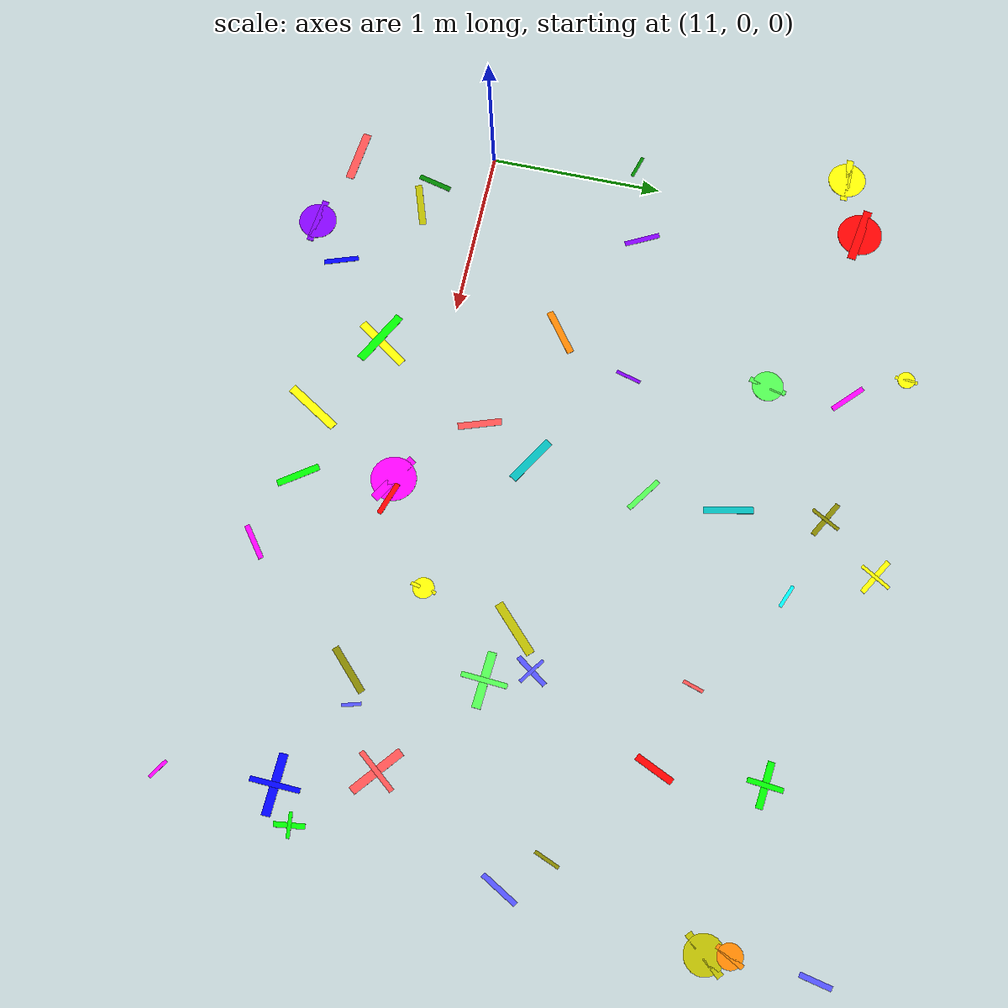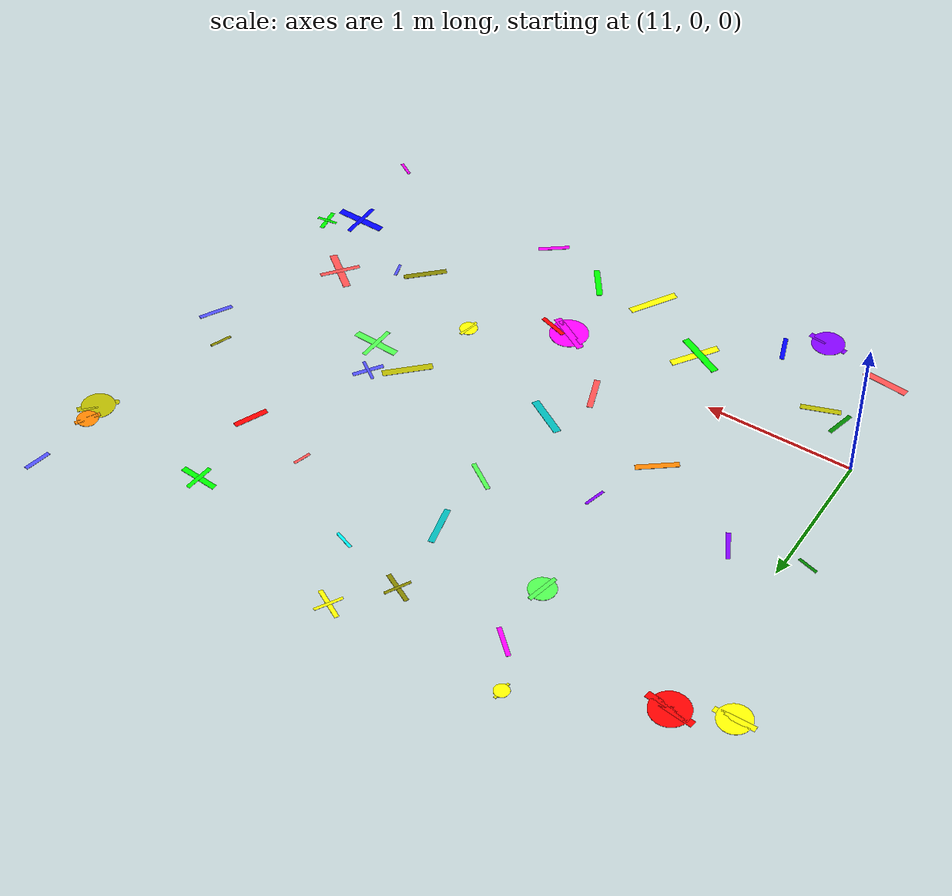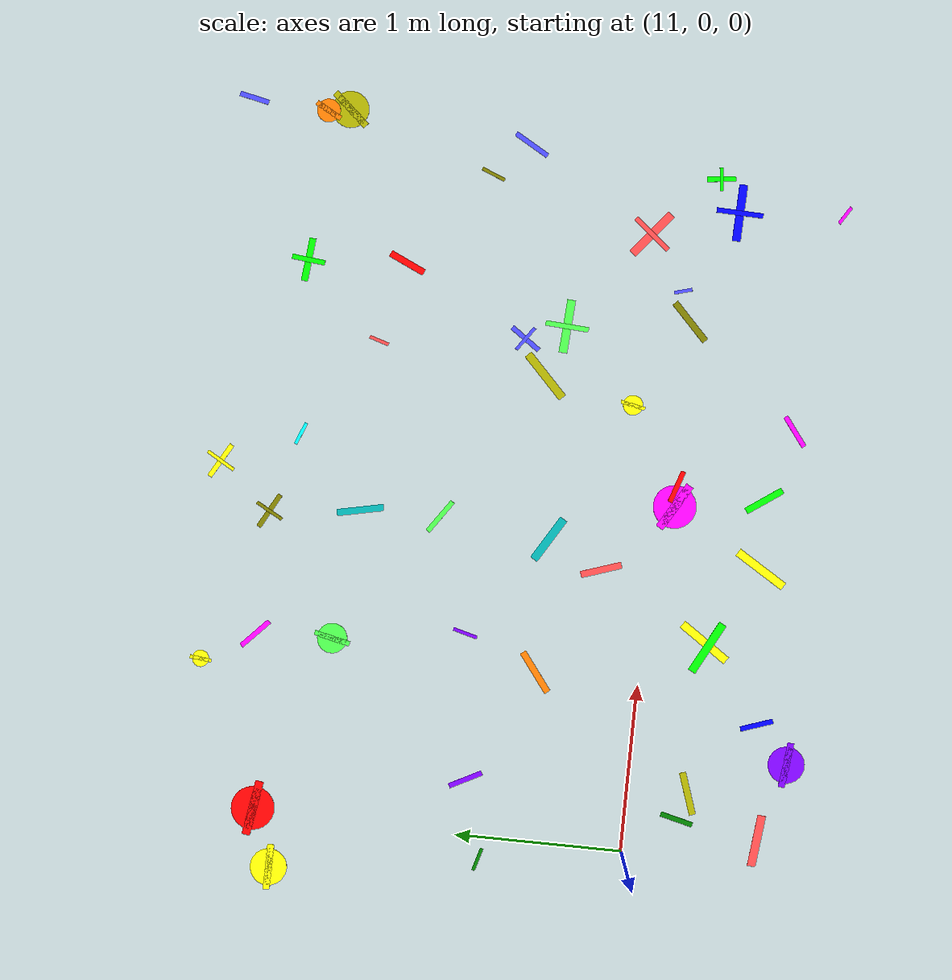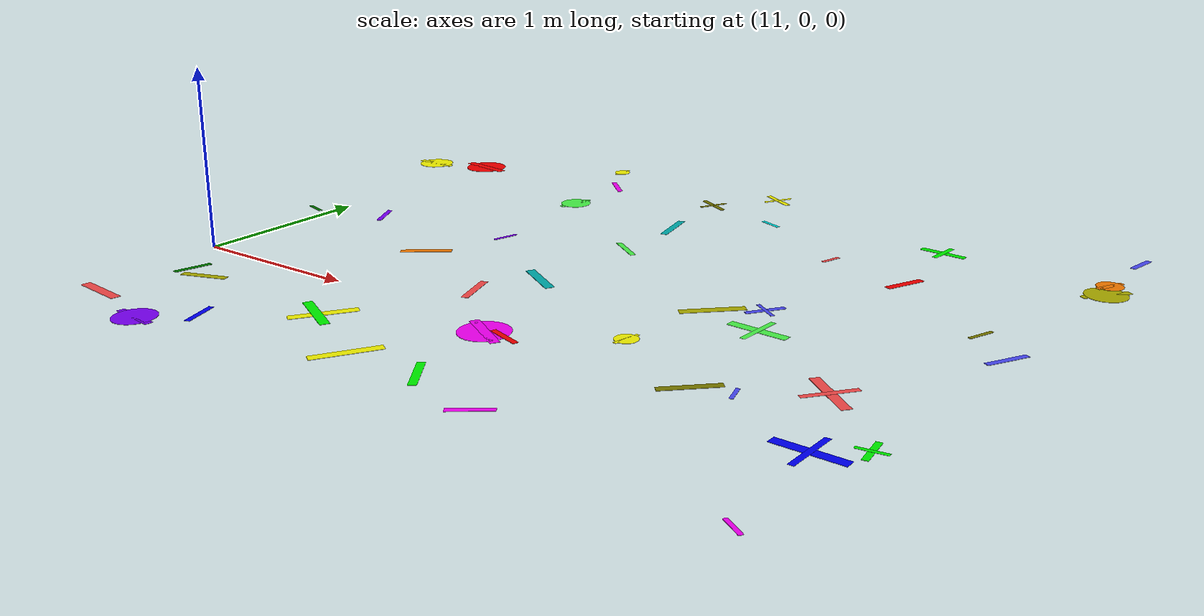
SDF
<sdf version="1.6">
 <world name="default">
  <model name="letter_K_1968">
   <static>true</static>
   <pose>11.15 -0.80 0.007 0 0 3.033</pose>
   <link name="link">
    <visual name="visual">
     <geometry><box><size>0.31 0.05 0.002</size></box></geometry>
     <material>
      <ambient>1.0 0.3 0.3 1</ambient>
      <diffuse>1.0 0.3 0.3 1</diffuse>
      <specular>0.1 0.1 0.1 1</specular>
     </material>
    </visual>
   </link>
  </model>
  <model name="letter_J_1971">
   <static>true</static>
   <pose>11.39 -0.36 0.010 0 0 3.473</pose>
   <link name="link">
    <visual name="visual">
     <geometry><box><size>0.26 0.04 0.002</size></box></geometry>
     <material>
      <ambient>0.7 0.7 0.0 1</ambient>
      <diffuse>0.7 0.7 0.0 1</diffuse>
      <specular>0.1 0.1 0.1 1</specular>
     </material>
    </visual>
   </link>
  </model>
  <model name="letter_P_1972">
   <static>true</static>
   <pose>11.23 -0.31 0.009 0 0 1.335</pose>
   <link name="link">
    <visual name="visual">
     <geometry><box><size>0.20 0.03 0.002</size></box></geometry>
     <material>
      <ambient>0.0 0.5 0.0 1</ambient>
      <diffuse>0.0 0.5 0.0 1</diffuse>
      <specular>0.1 0.1 0.1 1</specular>
     </material>
    </visual>
   </link>
  </model>
  <model name="letter_D_1973">
   <static>true</static>
   <pose>10.87 0.85 0.005 0 0 6.004</pose>
   <link name="link">
    <visual name="visual">
     <geometry><box><size>0.14 0.02 0.002</size></box></geometry>
     <material>
      <ambient>0.0 0.5 0.0 1</ambient>
      <diffuse>0.0 0.5 0.0 1</diffuse>
      <specular>0.1 0.1 0.1 1</specular>
     </material>
    </visual>
   </link>
  </model>
  <model name="letter_B_1974">
   <static>true</static>
   <pose>11.34 0.97 0.011 0 0 2.048</pose>
   <link name="link">
    <visual name="visual">
     <geometry><box><size>0.21 0.03 0.002</size></box></geometry>
     <material>
      <ambient>0.5 0.0 1.0 1</ambient>
      <diffuse>0.5 0.0 1.0 1</diffuse>
      <specular>0.1 0.1 0.1 1</specular>
     </material>
    </visual>
   </link>
  </model>
  <model name="letter_O_1975">
   <static>true</static>
   <pose>10.70 2.09 0.011 0 0 6.280</pose>
   <link name="link">
    <visual name="visual">
     <geometry><box><size>0.27 0.04 0.002</size></box></geometry>
     <material>
      <ambient>1.0 1.0 0.0 1</ambient>
      <diffuse>1.0 1.0 0.0 1</diffuse>
      <specular>0.1 0.1 0.1 1</specular>
     </material>
    </visual>
    <visual name="visual2">
     <geometry><cylinder><radius>0.11</radius><length>0.002</length></cylinder></geometry>
     <material><ambient>1.0 1.0 0.0 1</ambient><diffuse>1.0 1.0 0.0 1</diffuse></material>
    </visual>
   </link>
  </model>
  <model name="letter_G_1976">
   <static>true</static>
   <pose>11.04 2.22 0.006 0 0 2.986</pose>
   <link name="link">
    <visual name="visual">
     <geometry><box><size>0.33 0.05 0.002</size></box></geometry>
     <material>
      <ambient>1.0 0.0 0.0 1</ambient>
      <diffuse>1.0 0.0 0.0 1</diffuse>
      <specular>0.1 0.1 0.1 1</specular>
     </material>
    </visual>
    <visual name="visual2">
     <geometry><cylinder><radius>0.13</radius><length>0.002</length></cylinder></geometry>
     <material><ambient>1.0 0.0 0.0 1</ambient><diffuse>1.0 0.0 0.0 1</diffuse></material>
    </visual>
   </link>
  </model>
  <model name="letter_O_2040">
   <static>true</static>
   <pose>11.62 -0.93 0.011 0 0 3.027</pose>
   <link name="link">
    <visual name="visual">
     <geometry><box><size>0.27 0.04 0.002</size></box></geometry>
     <material>
      <ambient>0.5 0.0 1.0 1</ambient>
      <diffuse>0.5 0.0 1.0 1</diffuse>
      <specular>0.1 0.1 0.1 1</specular>
     </material>
    </visual>
    <visual name="visual2">
     <geometry><cylinder><radius>0.11</radius><length>0.002</length></cylinder></geometry>
     <material><ambient>0.5 0.0 1.0 1</ambient><diffuse>0.5 0.0 1.0 1</diffuse></material>
    </visual>
   </link>
  </model>
  <model name="letter_Y_2041">
   <static>true</static>
   <pose>11.84 -0.73 0.012 0 0 1.904</pose>
   <link name="link">
    <visual name="visual">
     <geometry><box><size>0.20 0.03 0.002</size></box></geometry>
     <material>
      <ambient>0.0 0.0 1.0 1</ambient>
      <diffuse>0.0 0.0 1.0 1</diffuse>
      <specular>0.1 0.1 0.1 1</specular>
     </material>
    </visual>
   </link>
  </model>
  <model name="letter_U_2043">
   <static>true</static>
   <pose>12.27 -0.39 0.007 0 0 2.658</pose>
   <link name="link">
    <visual name="visual">
     <geometry><box><size>0.34 0.05 0.002</size></box></geometry>
     <material>
      <ambient>0.0 1.0 0.0 1</ambient>
      <diffuse>0.0 1.0 0.0 1</diffuse>
      <specular>0.1 0.1 0.1 1</specular>
     </material>
    </visual>
   </link>
  </model>
  <model name="letter_D_2044">
   <static>true</static>
   <pose>12.30 -0.37 0.004 0 0 4.115</pose>
   <link name="link">
    <visual name="visual">
     <geometry><box><size>0.34 0.05 0.002</size></box></geometry>
     <material>
      <ambient>1.0 1.0 0.0 1</ambient>
      <diffuse>1.0 1.0 0.0 1</diffuse>
      <specular>0.1 0.1 0.1 1</specular>
     </material>
    </visual>
   </link>
  </model>
  <model name="letter_S_2045">
   <static>true</static>
   <pose>12.02 0.62 0.007 0 0 3.793</pose>
   <link name="link">
    <visual name="visual">
     <geometry><box><size>0.28 0.04 0.002</size></box></geometry>
     <material>
      <ambient>1.0 0.5 0.0 1</ambient>
      <diffuse>1.0 0.5 0.0 1</diffuse>
      <specular>0.1 0.1 0.1 1</specular>
     </material>
    </visual>
   </link>
  </model>
  <model name="letter_U_2046">
   <static>true</static>
   <pose>12.21 1.06 0.009 0 0 4.455</pose>
   <link name="link">
    <visual name="visual">
     <geometry><box><size>0.15 0.02 0.002</size></box></geometry>
     <material>
      <ambient>0.5 0.0 1.0 1</ambient>
      <diffuse>0.5 0.0 1.0 1</diffuse>
      <specular>0.1 0.1 0.1 1</specular>
     </material>
    </visual>
   </link>
  </model>
  <model name="letter_G_2047">
   <static>true</static>
   <pose>12.10 1.85 0.008 0 0 4.489</pose>
   <link name="link">
    <visual name="visual">
     <geometry><box><size>0.22 0.03 0.002</size></box></geometry>
     <material>
      <ambient>0.3 1.0 0.3 1</ambient>
      <diffuse>0.3 1.0 0.3 1</diffuse>
      <specular>0.1 0.1 0.1 1</specular>
     </material>
    </visual>
    <visual name="visual2">
     <geometry><cylinder><radius>0.09</radius><length>0.002</length></cylinder></geometry>
     <material><ambient>0.3 1.0 0.3 1</ambient><diffuse>0.3 1.0 0.3 1</diffuse></material>
    </visual>
   </link>
  </model>
  <model name="letter_V_2048">
   <static>true</static>
   <pose>12.08 2.31 0.008 0 0 5.524</pose>
   <link name="link">
    <visual name="visual">
     <geometry><box><size>0.22 0.03 0.002</size></box></geometry>
     <material>
      <ambient>1.0 0.0 1.0 1</ambient>
      <diffuse>1.0 0.0 1.0 1</diffuse>
      <specular>0.1 0.1 0.1 1</specular>
     </material>
    </visual>
   </link>
  </model>
  <model name="letter_C_2050">
   <static>true</static>
   <pose>11.90 2.62 0.013 0 0 1.464</pose>
   <link name="link">
    <visual name="visual">
     <geometry><box><size>0.13 0.02 0.002</size></box></geometry>
     <material>
      <ambient>1.0 1.0 0.0 1</ambient>
      <diffuse>1.0 1.0 0.0 1</diffuse>
      <specular>0.1 0.1 0.1 1</specular>
     </material>
    </visual>
    <visual name="visual2">
     <geometry><cylinder><radius>0.05</radius><length>0.002</length></cylinder></geometry>
     <material><ambient>1.0 1.0 0.0 1</ambient><diffuse>1.0 1.0 0.0 1</diffuse></material>
    </visual>
   </link>
  </model>
  <model name="letter_Z_2120">
   <static>true</static>
   <pose>13.18 -0.64 0.008 0 0 2.184</pose>
   <link name="link">
    <visual name="visual">
     <geometry><box><size>0.25 0.04 0.002</size></box></geometry>
     <material>
      <ambient>0.0 1.0 0.0 1</ambient>
      <diffuse>0.0 1.0 0.0 1</diffuse>
      <specular>0.1 0.1 0.1 1</specular>
     </material>
    </visual>
   </link>
  </model>
  <model name="letter_M_2121">
   <static>true</static>
   <pose>12.77 -0.66 0.012 0 0 4.162</pose>
   <link name="link">
    <visual name="visual">
     <geometry><box><size>0.34 0.05 0.002</size></box></geometry>
     <material>
      <ambient>1.0 1.0 0.0 1</ambient>
      <diffuse>1.0 1.0 0.0 1</diffuse>
      <specular>0.1 0.1 0.1 1</specular>
     </material>
    </visual>
   </link>
  </model>
  <model name="letter_D_2122">
   <static>true</static>
   <pose>12.67 0.29 0.012 0 0 1.898</pose>
   <link name="link">
    <visual name="visual">
     <geometry><box><size>0.25 0.04 0.002</size></box></geometry>
     <material>
      <ambient>1.0 0.3 0.3 1</ambient>
      <diffuse>1.0 0.3 0.3 1</diffuse>
      <specular>0.1 0.1 0.1 1</specular>
     </material>
    </visual>
   </link>
  </model>
  <model name="letter_Q_2123">
   <static>true</static>
   <pose>13.09 -0.11 0.010 0 0 5.752</pose>
   <link name="link">
    <visual name="visual">
     <geometry><box><size>0.31 0.05 0.002</size></box></geometry>
     <material>
      <ambient>1.0 0.0 1.0 1</ambient>
      <diffuse>1.0 0.0 1.0 1</diffuse>
      <specular>0.1 0.1 0.1 1</specular>
     </material>
    </visual>
    <visual name="visual2">
     <geometry><cylinder><radius>0.13</radius><length>0.002</length></cylinder></geometry>
     <material><ambient>1.0 0.0 1.0 1</ambient><diffuse>1.0 0.0 1.0 1</diffuse></material>
    </visual>
   </link>
  </model>
  <model name="letter_Z_2124">
   <static>true</static>
   <pose>13.21 -0.11 0.012 0 0 2.823</pose>
   <link name="link">
    <visual name="visual">
     <geometry><box><size>0.20 0.03 0.002</size></box></geometry>
     <material>
      <ambient>1.0 0.0 0.0 1</ambient>
      <diffuse>1.0 0.0 0.0 1</diffuse>
      <specular>0.1 0.1 0.1 1</specular>
     </material>
    </visual>
   </link>
  </model>
  <model name="letter_D_2125">
   <static>true</static>
   <pose>12.82 0.62 0.005 0 0 2.601</pose>
   <link name="link">
    <visual name="visual">
     <geometry><box><size>0.30 0.05 0.002</size></box></geometry>
     <material>
      <ambient>0.0 0.7 0.7 1</ambient>
      <diffuse>0.0 0.7 0.7 1</diffuse>
      <specular>0.1 0.1 0.1 1</specular>
     </material>
    </visual>
   </link>
  </model>
  <model name="letter_D_2126">
   <static>true</static>
   <pose>12.89 1.28 0.008 0 0 2.536</pose>
   <link name="link">
    <visual name="visual">
     <geometry><box><size>0.23 0.03 0.002</size></box></geometry>
     <material>
      <ambient>0.3 1.0 0.3 1</ambient>
      <diffuse>0.3 1.0 0.3 1</diffuse>
      <specular>0.1 0.1 0.1 1</specular>
     </material>
    </visual>
   </link>
  </model>
  <model name="letter_M_2127">
   <static>true</static>
   <pose>12.88 1.76 0.010 0 0 4.922</pose>
   <link name="link">
    <visual name="visual">
     <geometry><box><size>0.28 0.04 0.002</size></box></geometry>
     <material>
      <ambient>0.0 0.7 0.7 1</ambient>
      <diffuse>0.0 0.7 0.7 1</diffuse>
      <specular>0.1 0.1 0.1 1</specular>
     </material>
    </visual>
   </link>
  </model>
  <model name="letter_H_2128">
   <static>true</static>
   <pose>12.82 2.30 0.009 0 0 5.786</pose>
   <link name="link">
    <visual name="visual">
     <geometry><box><size>0.23 0.03 0.002</size></box></geometry>
     <material>
      <ambient>0.5 0.5 0.0 1</ambient>
      <diffuse>0.5 0.5 0.0 1</diffuse>
      <specular>0.1 0.1 0.1 1</specular>
     </material>
    </visual>
    <visual name="visual2">
     <pose>0 0 0.001 0 0 1.57</pose>
     <geometry><box><size>0.18 0.02 0.001</size></box></geometry>
     <material><ambient>0.5 0.5 0.0 1</ambient><diffuse>0.5 0.5 0.0 1</diffuse></material>
    </visual>
   </link>
  </model>
  <model name="letter_W_2129">
   <static>true</static>
   <pose>13.30 2.16 0.007 0 0 5.903</pose>
   <link name="link">
    <visual name="visual">
     <geometry><box><size>0.14 0.02 0.002</size></box></geometry>
     <material>
      <ambient>0.0 1.0 1.0 1</ambient>
      <diffuse>0.0 1.0 1.0 1</diffuse>
      <specular>0.1 0.1 0.1 1</specular>
     </material>
    </visual>
   </link>
  </model>
  <model name="letter_F_2130">
   <static>true</static>
   <pose>13.09 2.62 0.011 0 0 5.760</pose>
   <link name="link">
    <visual name="visual">
     <geometry><box><size>0.23 0.03 0.002</size></box></geometry>
     <material>
      <ambient>1.0 1.0 0.0 1</ambient>
      <diffuse>1.0 1.0 0.0 1</diffuse>
      <specular>0.1 0.1 0.1 1</specular>
     </material>
    </visual>
    <visual name="visual2">
     <pose>0 0 0.001 0 0 1.57</pose>
     <geometry><box><size>0.19 0.02 0.001</size></box></geometry>
     <material><ambient>1.0 1.0 0.0 1</ambient><diffuse>1.0 1.0 0.0 1</diffuse></material>
    </visual>
   </link>
  </model>
  <model name="letter_P_2197">
   <static>true</static>
   <pose>13.61 -0.78 0.008 0 0 0.649</pose>
   <link name="link">
    <visual name="visual">
     <geometry><box><size>0.21 0.03 0.002</size></box></geometry>
     <material>
      <ambient>1.0 0.0 1.0 1</ambient>
      <diffuse>1.0 0.0 1.0 1</diffuse>
      <specular>0.1 0.1 0.1 1</specular>
     </material>
    </visual>
   </link>
  </model>
  <model name="letter_J_2198">
   <static>true</static>
   <pose>14.38 -0.03 0.006 0 0 4.988</pose>
   <link name="link">
    <visual name="visual">
     <geometry><box><size>0.11 0.02 0.002</size></box></geometry>
     <material>
      <ambient>0.3 0.3 1.0 1</ambient>
      <diffuse>0.3 0.3 1.0 1</diffuse>
      <specular>0.1 0.1 0.1 1</specular>
     </material>
    </visual>
   </link>
  </model>
  <model name="letter_Q_2199">
   <static>true</static>
   <pose>13.67 0.20 0.007 0 0 4.511</pose>
   <link name="link">
    <visual name="visual">
     <geometry><box><size>0.15 0.02 0.002</size></box></geometry>
     <material>
      <ambient>1.0 1.0 0.0 1</ambient>
      <diffuse>1.0 1.0 0.0 1</diffuse>
      <specular>0.1 0.1 0.1 1</specular>
     </material>
    </visual>
    <visual name="visual2">
     <geometry><cylinder><radius>0.06</radius><length>0.002</length></cylinder></geometry>
     <material><ambient>1.0 1.0 0.0 1</ambient><diffuse>1.0 1.0 0.0 1</diffuse></material>
    </visual>
   </link>
  </model>
  <model name="letter_D_2200">
   <static>true</static>
   <pose>14.20 -0.09 0.010 0 0 3.909</pose>
   <link name="link">
    <visual name="visual">
     <geometry><box><size>0.29 0.04 0.002</size></box></geometry>
     <material>
      <ambient>0.5 0.5 0.0 1</ambient>
      <diffuse>0.5 0.5 0.0 1</diffuse>
      <specular>0.1 0.1 0.1 1</specular>
     </material>
    </visual>
   </link>
  </model>
  <model name="letter_A_2201">
   <static>true</static>
   <pose>14.10 0.64 0.005 0 0 6.219</pose>
   <link name="link">
    <visual name="visual">
     <geometry><box><size>0.32 0.05 0.002</size></box></geometry>
     <material>
      <ambient>0.3 1.0 0.3 1</ambient>
      <diffuse>0.3 1.0 0.3 1</diffuse>
      <specular>0.1 0.1 0.1 1</specular>
     </material>
    </visual>
    <visual name="visual2">
     <pose>0 0 0.001 0 0 1.57</pose>
     <geometry><box><size>0.26 0.03 0.001</size></box></geometry>
     <material><ambient>0.3 1.0 0.3 1</ambient><diffuse>0.3 1.0 0.3 1</diffuse></material>
    </visual>
   </link>
  </model>
  <model name="letter_F_2202">
   <static>true</static>
   <pose>14.00 0.88 0.010 0 0 0.955</pose>
   <link name="link">
    <visual name="visual">
     <geometry><box><size>0.21 0.03 0.002</size></box></geometry>
     <material>
      <ambient>0.3 0.3 1.0 1</ambient>
      <diffuse>0.3 0.3 1.0 1</diffuse>
      <specular>0.1 0.1 0.1 1</specular>
     </material>
    </visual>
    <visual name="visual2">
     <pose>0 0 0.001 0 0 1.57</pose>
     <geometry><box><size>0.17 0.02 0.001</size></box></geometry>
     <material><ambient>0.3 0.3 1.0 1</ambient><diffuse>0.3 0.3 1.0 1</diffuse></material>
    </visual>
   </link>
  </model>
  <model name="letter_U_2203">
   <static>true</static>
   <pose>13.79 0.74 0.009 0 0 3.910</pose>
   <link name="link">
    <visual name="visual">
     <geometry><box><size>0.33 0.05 0.002</size></box></geometry>
     <material>
      <ambient>0.7 0.7 0.0 1</ambient>
      <diffuse>0.7 0.7 0.0 1</diffuse>
      <specular>0.1 0.1 0.1 1</specular>
     </material>
    </visual>
   </link>
  </model>
  <model name="letter_S_2204">
   <static>true</static>
   <pose>14.38 1.63 0.007 0 0 1.146</pose>
   <link name="link">
    <visual name="visual">
     <geometry><box><size>0.23 0.04 0.002</size></box></geometry>
     <material>
      <ambient>1.0 0.0 0.0 1</ambient>
      <diffuse>1.0 0.0 0.0 1</diffuse>
      <specular>0.1 0.1 0.1 1</specular>
     </material>
    </visual>
   </link>
  </model>
  <model name="letter_W_2205">
   <static>true</static>
   <pose>13.90 1.75 0.013 0 0 1.271</pose>
   <link name="link">
    <visual name="visual">
     <geometry><box><size>0.12 0.02 0.002</size></box></geometry>
     <material>
      <ambient>1.0 0.3 0.3 1</ambient>
      <diffuse>1.0 0.3 0.3 1</diffuse>
      <specular>0.1 0.1 0.1 1</specular>
     </material>
    </visual>
   </link>
  </model>
  <model name="letter_A_2206">
   <static>true</static>
   <pose>14.34 2.22 0.008 0 0 3.044</pose>
   <link name="link">
    <visual name="visual">
     <geometry><box><size>0.26 0.04 0.002</size></box></geometry>
     <material>
      <ambient>0.0 1.0 0.0 1</ambient>
      <diffuse>0.0 1.0 0.0 1</diffuse>
      <specular>0.1 0.1 0.1 1</specular>
     </material>
    </visual>
    <visual name="visual2">
     <pose>0 0 0.001 0 0 1.57</pose>
     <geometry><box><size>0.20 0.03 0.001</size></box></geometry>
     <material><ambient>0.0 1.0 0.0 1</ambient><diffuse>0.0 1.0 0.0 1</diffuse></material>
    </visual>
   </link>
  </model>
  <model name="letter_V_2278">
   <static>true</static>
   <pose>14.93 -0.95 0.004 0 0 2.585</pose>
   <link name="link">
    <visual name="visual">
     <geometry><box><size>0.12 0.02 0.002</size></box></geometry>
     <material>
      <ambient>1.0 0.0 1.0 1</ambient>
      <diffuse>1.0 0.0 1.0 1</diffuse>
      <specular>0.1 0.1 0.1 1</specular>
     </material>
    </visual>
   </link>
  </model>
  <model name="letter_A_2280">
   <static>true</static>
   <pose>15.07 -0.19 0.011 0 0 4.839</pose>
   <link name="link">
    <visual name="visual">
     <geometry><box><size>0.17 0.03 0.002</size></box></geometry>
     <material>
      <ambient>0.0 1.0 0.0 1</ambient>
      <diffuse>0.0 1.0 0.0 1</diffuse>
      <specular>0.1 0.1 0.1 1</specular>
     </material>
    </visual>
    <visual name="visual2">
     <pose>0 0 0.001 0 0 1.57</pose>
     <geometry><box><size>0.14 0.02 0.001</size></box></geometry>
     <material><ambient>0.0 1.0 0.0 1</ambient><diffuse>0.0 1.0 0.0 1</diffuse></material>
    </visual>
   </link>
  </model>
  <model name="letter_F_2281">
   <static>true</static>
   <pose>14.70 0.19 0.010 0 0 2.461</pose>
   <link name="link">
    <visual name="visual">
     <geometry><box><size>0.33 0.05 0.002</size></box></geometry>
     <material>
      <ambient>1.0 0.3 0.3 1</ambient>
      <diffuse>1.0 0.3 0.3 1</diffuse>
      <specular>0.1 0.1 0.1 1</specular>
     </material>
    </visual>
    <visual name="visual2">
     <pose>0 0 0.001 0 0 1.57</pose>
     <geometry><box><size>0.27 0.03 0.001</size></box></geometry>
     <material><ambient>1.0 0.3 0.3 1</ambient><diffuse>1.0 0.3 0.3 1</diffuse></material>
    </visual>
   </link>
  </model>
  <model name="letter_F_2282">
   <static>true</static>
   <pose>14.88 -0.32 0.007 0 0 6.252</pose>
   <link name="link">
    <visual name="visual">
     <geometry><box><size>0.34 0.05 0.002</size></box></geometry>
     <material>
      <ambient>0.0 0.0 1.0 1</ambient>
      <diffuse>0.0 0.0 1.0 1</diffuse>
      <specular>0.1 0.1 0.1 1</specular>
     </material>
    </visual>
    <visual name="visual2">
     <pose>0 0 0.001 0 0 1.57</pose>
     <geometry><box><size>0.28 0.03 0.001</size></box></geometry>
     <material><ambient>0.0 0.0 1.0 1</ambient><diffuse>0.0 0.0 1.0 1</diffuse></material>
    </visual>
   </link>
  </model>
  <model name="letter_Z_2283">
   <static>true</static>
   <pose>15.16 0.96 0.007 0 0 4.195</pose>
   <link name="link">
    <visual name="visual">
     <geometry><box><size>0.23 0.03 0.002</size></box></geometry>
     <material>
      <ambient>0.3 0.3 1.0 1</ambient>
      <diffuse>0.3 0.3 1.0 1</diffuse>
      <specular>0.1 0.1 0.1 1</specular>
     </material>
    </visual>
   </link>
  </model>
  <model name="letter_P_2284">
   <static>true</static>
   <pose>14.96 1.17 0.011 0 0 4.329</pose>
   <link name="link">
    <visual name="visual">
     <geometry><box><size>0.15 0.02 0.002</size></box></geometry>
     <material>
      <ambient>0.5 0.5 0.0 1</ambient>
      <diffuse>0.5 0.5 0.0 1</diffuse>
      <specular>0.1 0.1 0.1 1</specular>
     </material>
    </visual>
   </link>
  </model>
  <model name="letter_O_2285">
   <static>true</static>
   <pose>15.26 2.06 0.006 0 0 3.989</pose>
   <link name="link">
    <visual name="visual">
     <geometry><box><size>0.27 0.04 0.002</size></box></geometry>
     <material>
      <ambient>0.7 0.7 0.0 1</ambient>
      <diffuse>0.7 0.7 0.0 1</diffuse>
      <specular>0.1 0.1 0.1 1</specular>
     </material>
    </visual>
    <visual name="visual2">
     <geometry><cylinder><radius>0.11</radius><length>0.002</length></cylinder></geometry>
     <material><ambient>0.7 0.7 0.0 1</ambient><diffuse>0.7 0.7 0.0 1</diffuse></material>
    </visual>
   </link>
  </model>
  <model name="letter_O_2286">
   <static>true</static>
   <pose>15.24 2.19 0.011 0 0 1.075</pose>
   <link name="link">
    <visual name="visual">
     <geometry><box><size>0.17 0.03 0.002</size></box></geometry>
     <material>
      <ambient>1.0 0.5 0.0 1</ambient>
      <diffuse>1.0 0.5 0.0 1</diffuse>
      <specular>0.1 0.1 0.1 1</specular>
     </material>
    </visual>
    <visual name="visual2">
     <geometry><cylinder><radius>0.07</radius><length>0.002</length></cylinder></geometry>
     <material><ambient>1.0 0.5 0.0 1</ambient><diffuse>1.0 0.5 0.0 1</diffuse></material>
    </visual>
   </link>
  </model>
  <model name="letter_J_2287">
   <static>true</static>
   <pose>15.27 2.64 0.008 0 0 4.507</pose>
   <link name="link">
    <visual name="visual">
     <geometry><box><size>0.18 0.03 0.002</size></box></geometry>
     <material>
      <ambient>0.3 0.3 1.0 1</ambient>
      <diffuse>0.3 0.3 1.0 1</diffuse>
      <specular>0.1 0.1 0.1 1</specular>
     </material>
    </visual>
   </link>
  </model>
 </world>
</sdf>
